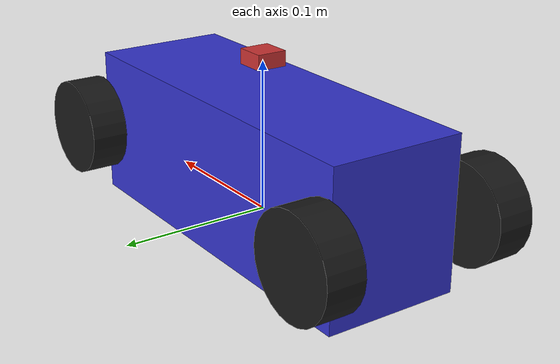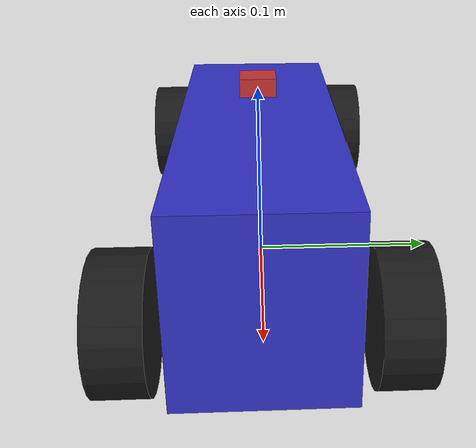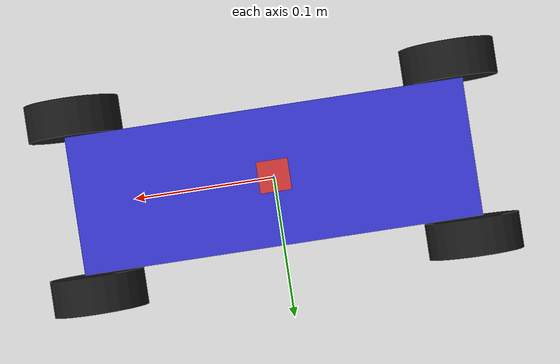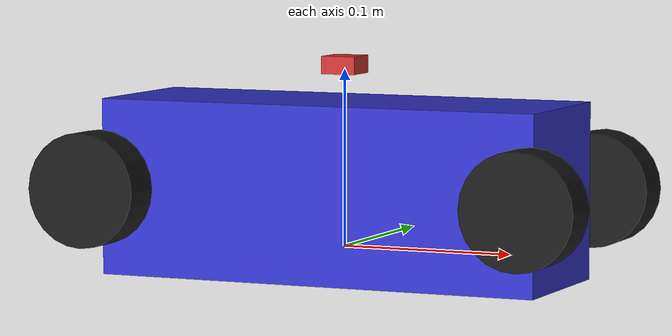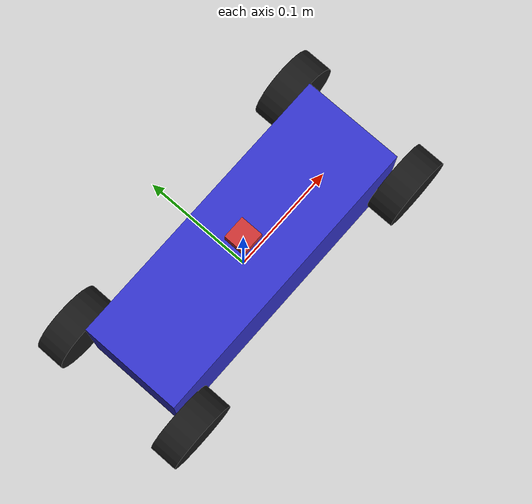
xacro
<?xml version="1.0"?>
<robot xmlns:xacro="http://www.ros.org/wiki/xacro" name="acds_robot">

  <!-- PROPERTIES -->
  <xacro:property name="wheel_radius" value="0.0325"/>
  <xacro:property name="wheel_width" value="0.025"/>
  <xacro:property name="wheelbase" value="0.26"/>
  <xacro:property name="track_width" value="0.12"/>
  <xacro:property name="chassis_length" value="0.26"/>
  <xacro:property name="chassis_width" value="0.09
  "/>
  <xacro:property name="chassis_height" value="0.10"/>

  <!-- BASE_FOOTPRINT (Ground projection) -->
  <link name="base_footprint"/>

  <!-- BASE_LINK (Main chassis) -->
  <joint name="base_joint" type="fixed">
    <parent link="base_footprint"/>
    <child link="base_link"/>
    <origin xyz="0 0 ${wheel_radius}" rpy="0 0 0"/>
  </joint>

  <link name="base_link">
    <visual>
      <geometry>
        <box size="${chassis_length} ${chassis_width} ${chassis_height}"/>
      </geometry>
      <material name="blue">
        <color rgba="0.2 0.2 0.8 1.0"/>
      </material>
    </visual>
    <collision>
      <geometry>
        <box size="${chassis_length} ${chassis_width} ${chassis_height}"/>
      </geometry>
    </collision>
    <inertial>
      <mass value="2.0"/>
      <inertia ixx="0.015" ixy="0.0" ixz="0.0"
               iyy="0.025" iyz="0.0" izz="0.030"/>
    </inertial>
  </link>

  <!-- REAR LEFT WHEEL -->
  <joint name="rear_left_wheel_joint" type="continuous">
    <parent link="base_link"/>
    <child link="rear_left_wheel"/>
    <origin xyz="${-wheelbase/2} ${track_width/2} 0" rpy="${-pi/2} 0 0"/>
    <axis xyz="0 0 1"/>
  </joint>

  <link name="rear_left_wheel">
    <visual>
      <geometry>
        <cylinder radius="${wheel_radius}" length="${wheel_width}"/>
      </geometry>
      <material name="black">
        <color rgba="0.1 0.1 0.1 1.0"/>
      </material>
    </visual>
    <collision>
      <geometry>
        <cylinder radius="${wheel_radius}" length="${wheel_width}"/>
      </geometry>
    </collision>
    <inertial>
      <mass value="0.2"/>
      <inertia ixx="0.0001" ixy="0.0" ixz="0.0"
               iyy="0.0001" iyz="0.0" izz="0.0001"/>
    </inertial>
  </link>

  <!-- REAR RIGHT WHEEL -->
  <joint name="rear_right_wheel_joint" type="continuous">
    <parent link="base_link"/>
    <child link="rear_right_wheel"/>
    <origin xyz="${-wheelbase/2} ${-track_width/2} 0" rpy="${-pi/2} 0 0"/>
    <axis xyz="0 0 1"/>
  </joint>

  <link name="rear_right_wheel">
    <visual>
      <geometry>
        <cylinder radius="${wheel_radius}" length="${wheel_width}"/>
      </geometry>
      <material name="black">
        <color rgba="0.1 0.1 0.1 1.0"/>
      </material>
    </visual>
    <collision>
      <geometry>
        <cylinder radius="${wheel_radius}" length="${wheel_width}"/>
      </geometry>
    </collision>
    <inertial>
      <mass value="0.2"/>
      <inertia ixx="0.0001" ixy="0.0" ixz="0.0"
               iyy="0.0001" iyz="0.0" izz="0.0001"/>
    </inertial>
  </link>

  <!-- FRONT LEFT WHEEL (Steerable) -->
  <joint name="front_left_steer_joint" type="revolute">
    <parent link="base_link"/>
    <child link="front_left_steer"/>
    <origin xyz="${wheelbase/2} ${track_width/2} 0" rpy="0 0 0"/>
    <axis xyz="0 0 1"/>
    <limit lower="${-pi/6}" upper="${pi/6}" effort="10" velocity="1.0"/>
  </joint>

  <link name="front_left_steer">
    <inertial>
      <mass value="0.05"/>
      <inertia ixx="0.00001" ixy="0.0" ixz="0.0"
               iyy="0.00001" iyz="0.0" izz="0.00001"/>
    </inertial>
  </link>

  <joint name="front_left_wheel_joint" type="continuous">
    <parent link="front_left_steer"/>
    <child link="front_left_wheel"/>
    <origin xyz="0 0 0" rpy="${-pi/2} 0 0"/>
    <axis xyz="0 0 1"/>
  </joint>

  <link name="front_left_wheel">
    <visual>
      <geometry>
        <cylinder radius="${wheel_radius}" length="${wheel_width}"/>
      </geometry>
      <material name="black"/>
    </visual>
    <collision>
      <geometry>
        <cylinder radius="${wheel_radius}" length="${wheel_width}"/>
      </geometry>
    </collision>
    <inertial>
      <mass value="0.2"/>
      <inertia ixx="0.0001" ixy="0.0" ixz="0.0"
               iyy="0.0001" iyz="0.0" izz="0.0001"/>
    </inertial>
  </link>

  <!-- FRONT RIGHT WHEEL (Steerable) -->
  <joint name="front_right_steer_joint" type="revolute">
    <parent link="base_link"/>
    <child link="front_right_steer"/>
    <origin xyz="${wheelbase/2} ${-track_width/2} 0" rpy="0 0 0"/>
    <axis xyz="0 0 1"/>
    <limit lower="${-pi/6}" upper="${pi/6}" effort="10" velocity="1.0"/>
  </joint>

  <link name="front_right_steer">
    <inertial>
      <mass value="0.05"/>
      <inertia ixx="0.00001" ixy="0.0" ixz="0.0"
               iyy="0.00001" iyz="0.0" izz="0.00001"/>
    </inertial>
  </link>

  <joint name="front_right_wheel_joint" type="continuous">
    <parent link="front_right_steer"/>
    <child link="front_right_wheel"/>
    <origin xyz="0 0 0" rpy="${-pi/2} 0 0"/>
    <axis xyz="0 0 1"/>
  </joint>

  <link name="front_right_wheel">
    <visual>
      <geometry>
        <cylinder radius="${wheel_radius}" length="${wheel_width}"/>
      </geometry>
      <material name="black"/>
    </visual>
    <collision>
      <geometry>
        <cylinder radius="${wheel_radius}" length="${wheel_width}"/>
      </geometry>
    </collision>
    <inertial>
      <mass value="0.2"/>
      <inertia ixx="0.0001" ixy="0.0" ixz="0.0"
               iyy="0.0001" iyz="0.0" izz="0.0001"/>
    </inertial>
  </link>

  <!-- IMU LINK -->
  <joint name="imu_joint" type="fixed">
    <parent link="base_link"/>
    <child link="imu_link"/>
    <origin xyz="0 0 ${chassis_height/2 + 0.02}" rpy="0 0 0"/>
  </joint>

  <link name="imu_link">
    <visual>
      <geometry>
        <box size="0.02 0.02 0.01"/>
      </geometry>
      <material name="red">
        <color rgba="0.8 0.2 0.2 1.0"/>
      </material>
    </visual>
    <inertial>
      <mass value="0.01"/>
      <inertia ixx="0.000001" ixy="0.0" ixz="0.0"
               iyy="0.000001" iyz="0.0" izz="0.000001"/>
    </inertial>
  </link>

</robot>
